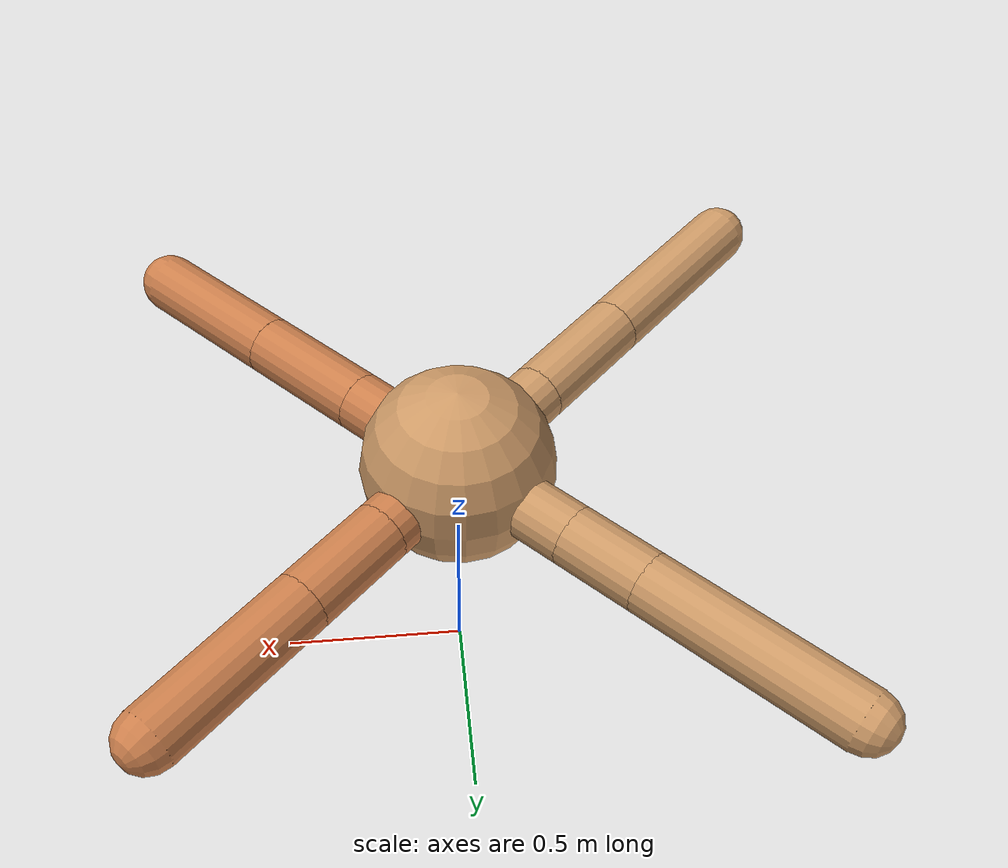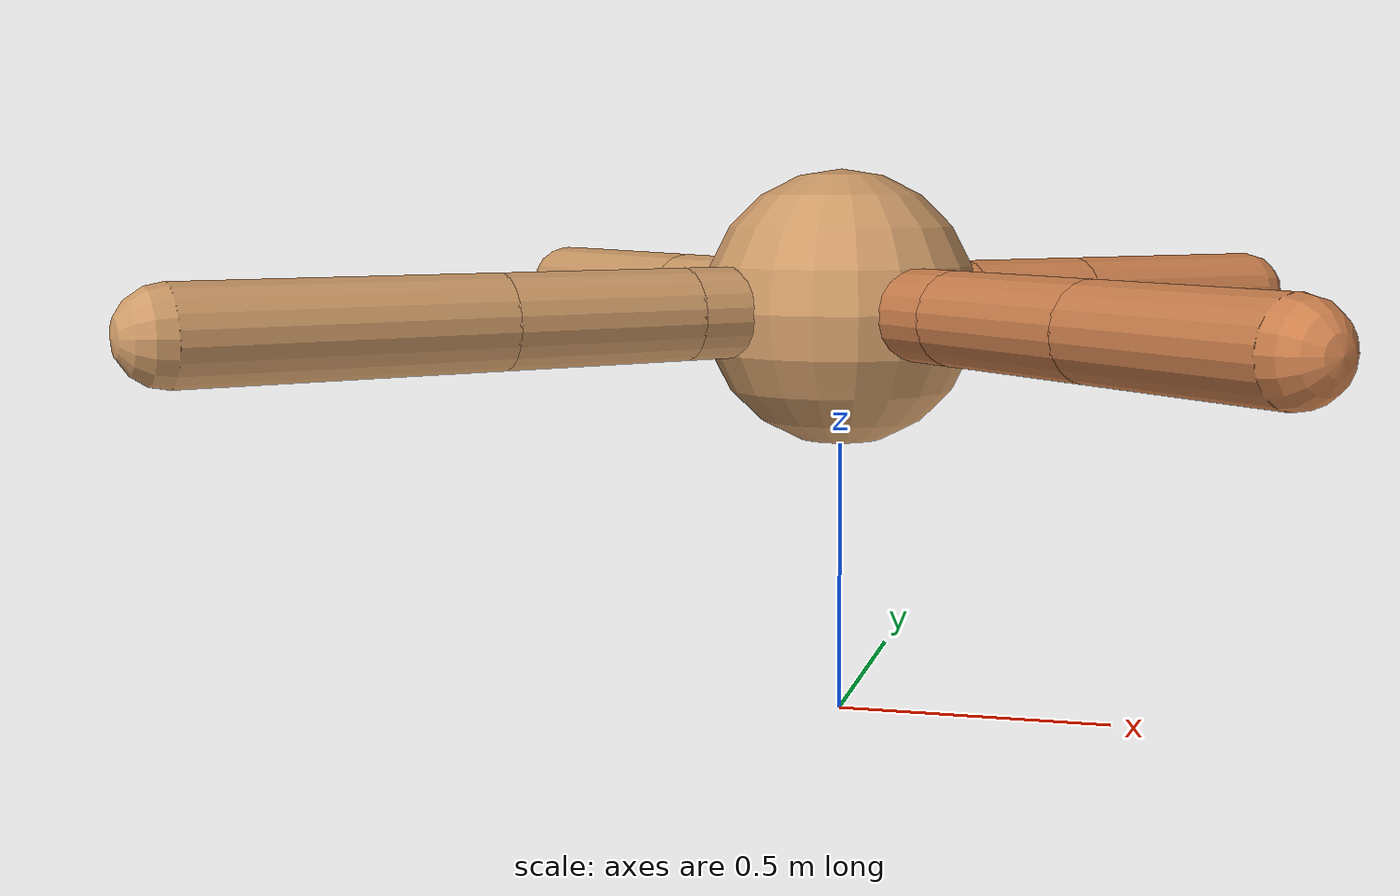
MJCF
<mujoco model="ant">
  <compiler angle="degree" coordinate="local" inertiafromgeom="true" />
  <option integrator="RK4" timestep="0.01" />
  <custom>
    <numeric data="0.0 0.0 0.55 1.0 0.0 0.0 0.0 0.0 1.0 0.0 -1.0 0.0 -1.0 0.0 1.0" name="init_qpos" />
  </custom>
  <default>
    <joint armature="1" damping="1" limited="true" />
    <geom conaffinity="0" condim="3" density="5.0" friction="1.5 0.1 0.1" margin="0.01" rgba="0.8 0.6 0.4 1" />
  </default>
  <worldbody>
    <body name="torso" pos="0 0 0.75">
      <geom name="torso_geom" pos="0 0 0" size="0.25" type="sphere" />

      <body name="front_left_leg" pos="0 0 0">
        <geom fromto="0.0 0.0 0.0 0.2012888340982355 0.2012888340982355 0.0" name="aux_1_geom" size="0.08" type="capsule" rgba=".8 .5 .3 1" />
        <body name="aux_1" pos="0.2012888340982355 0.2012888340982355 0.0">
          <joint axis="0 0 1" name="hip_1" pos="0.0 0.0 0.0" range="-40 40" type="hinge" />
          <geom fromto="0.0 0.0 0.0 0.1909620353854994 0.1909620353854994 0.0" name="left_leg_geom" size="0.08" type="capsule" rgba=".8 .5 .3 1" />
          <body pos="0.1909620353854994 0.1909620353854994 0.0" name="front_left_foot">
            <joint axis="-1 1 0" name="ankle_1" pos="0.0 0.0 0.0" range="30 100" type="hinge" />
            <geom fromto="0.0 0.0 0.0 0.3317490484755645 0.3317490484755645 0.0" name="left_ankle_geom" size="0.08" type="capsule" rgba=".8 .5 .3 1" />
          </body>
        </body>
      </body>
      <body name="front_right_leg" pos="0 0 0">
        <geom fromto="0.0 0.0 0.0 -0.25570589106555247 0.25570589106555247 0.0" name="aux_2_geom" size="0.08" type="capsule" />
        <body name="aux_2" pos="-0.25570589106555247 0.25570589106555247 0.0">
          <joint axis="0 0 1" name="hip_2" pos="0.0 0.0 0.0" range="-40 40" type="hinge" />
          <geom fromto="0.0 0.0 0.0 -0.15290465578731904 0.15290465578731904 0.0" name="right_leg_geom" size="0.08" type="capsule" />
          <body pos="-0.15290465578731904 0.15290465578731904 0.0" name="front_right_foot">
            <joint axis="1 1 0" name="ankle_2" pos="0.0 0.0 0.0" range="-100 -30" type="hinge" />
            <geom fromto="0.0 0.0 0.0 -0.40673066167572025 0.40673066167572025 0.0" name="right_ankle_geom" size="0.08" type="capsule" />
          </body>
        </body>
      </body>
      <body name="left_back_leg" pos="0 0 0">
        <geom fromto="0.0 0.0 0.0 -0.22857860310722758 -0.22857860310722758 0.0" name="aux_3_geom" size="0.08" type="capsule" />
        <body name="aux_3" pos="-0.22857860310722758 -0.22857860310722758 0.0">
          <joint axis="0 0 1" name="hip_3" pos="0.0 0.0 0.0" range="-40 40" type="hinge" />
          <geom fromto="0.0 0.0 0.0 -0.23805483179781095 -0.23805483179781095 0.0" name="back_leg_geom" size="0.08" type="capsule" />
          <body pos="-0.23805483179781095 -0.23805483179781095 0.0" name="left_back_foot">
            <joint axis="-1 1 0" name="ankle_3" pos="0.0 0.0 0.0" range="-100 -30" type="hinge" />
            <geom fromto="0.0 0.0 0.0 -0.37189255279903316 -0.37189255279903316 0.0" name="third_ankle_geom" size="0.08" type="capsule" />
          </body>
        </body>
      </body>
      <body name="right_back_leg" pos="0 0 0">
        <geom fromto="0.0 0.0 0.0 0.23874863487175377 -0.23874863487175377 0.0" name="aux_4_geom" size="0.08" type="capsule" rgba=".8 .5 .3 1" />
        <body name="aux_4" pos="0.23874863487175377 -0.23874863487175377 0.0">
          <joint axis="0 0 1" name="hip_4" pos="0.0 0.0 0.0" range="-40 40" type="hinge" />
          <geom fromto="0.0 0.0 0.0 0.23520638501498814 -0.23520638501498814 0.0" name="rightback_leg_geom" size="0.08" type="capsule" rgba=".8 .5 .3 1" />
          <body pos="0.23520638501498814 -0.23520638501498814 0.0" name="right_back_foot">
            <joint axis="1 1 0" name="ankle_4" pos="0.0 0.0 0.0" range="30 100" type="hinge" />
            <geom fromto="0.0 0.0 0.0 0.2864133925896096 -0.2864133925896096 0.0" name="fourth_ankle_geom" size="0.08" type="capsule" rgba=".8 .5 .3 1" />
          </body>
        </body>
      </body>
    </body>
  </worldbody>
  <actuator>
    <motor ctrllimited="true" ctrlrange="-1.0 1.0" joint="hip_4" gear="150" />
    <motor ctrllimited="true" ctrlrange="-1.0 1.0" joint="ankle_4" gear="150" />
    <motor ctrllimited="true" ctrlrange="-1.0 1.0" joint="hip_1" gear="150" />
    <motor ctrllimited="true" ctrlrange="-1.0 1.0" joint="ankle_1" gear="150" />
    <motor ctrllimited="true" ctrlrange="-1.0 1.0" joint="hip_2" gear="150" />
    <motor ctrllimited="true" ctrlrange="-1.0 1.0" joint="ankle_2" gear="150" />
    <motor ctrllimited="true" ctrlrange="-1.0 1.0" joint="hip_3" gear="150" />
    <motor ctrllimited="true" ctrlrange="-1.0 1.0" joint="ankle_3" gear="150" />
  </actuator>
</mujoco>
